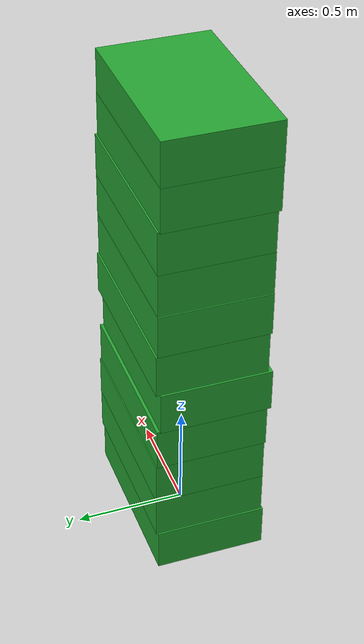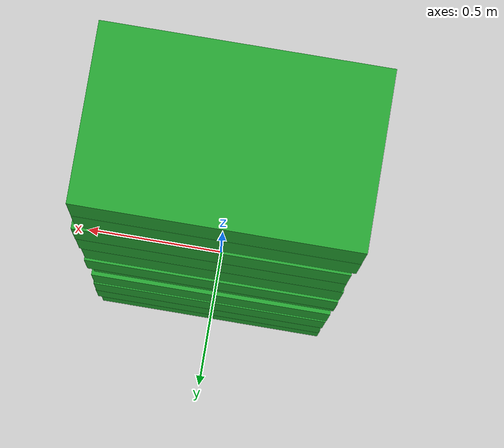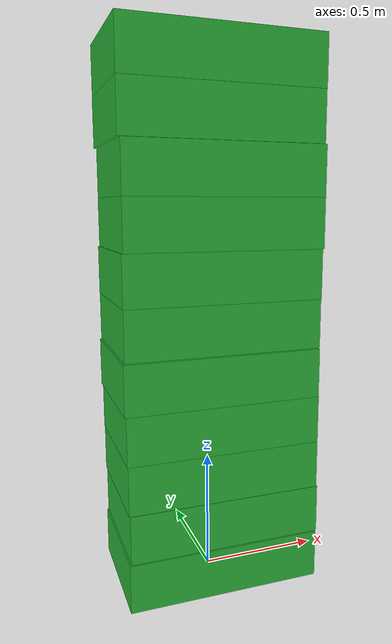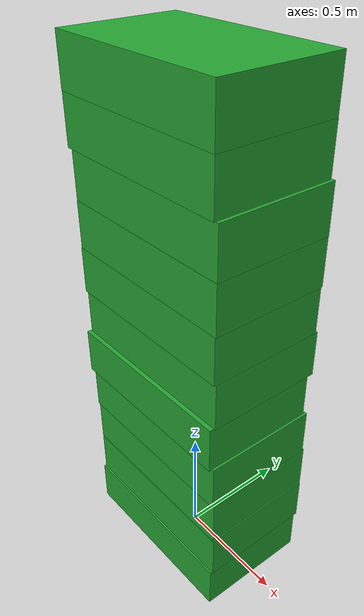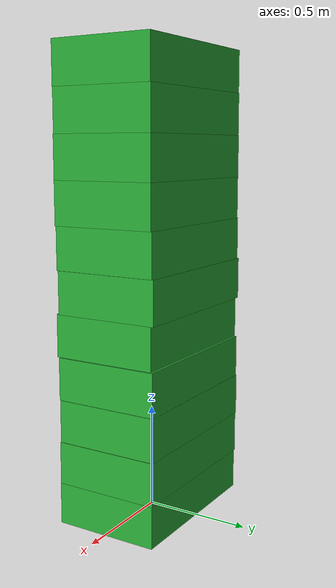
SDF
<?xml version="1.0" encoding="UTF-8"?>
<sdf version='1.4'>
    <model name="baggage_D_x11">
        <model name="baggage_D_0">
            <static>true</static>
            <link name="link">
                <collision name="collision">
                    <geometry>
                    <box>
                        <size>0.8 0.5 0.2</size>
                    </box>
                    </geometry>
                </collision>
                <visual name="visual">
                    <geometry>
                    <box>
                        <size>0.8 0.5 0.2</size>
                    </box>
                    </geometry>
                    <material>
                    <script>
                        <uri>file://media/materials/scripts/gazebo.material</uri>
                        <name>Gazebo/Green</name>
                    </script>
                    </material>
                </visual>
            </link>
            <pose frame=''>0 0 0.1 0 0 0</pose>
        </model>
        <model name="baggage_D_1">
            <static>true</static>
            <link name="link">
                <collision name="collision">
                    <geometry>
                    <box>
                        <size>0.8 0.5 0.2</size>
                    </box>
                    </geometry>
                </collision>
                <visual name="visual">
                    <geometry>
                    <box>
                        <size>0.8 0.5 0.2</size>
                    </box>
                    </geometry>
                    <material>
                    <script>
                        <uri>file://media/materials/scripts/gazebo.material</uri>
                        <name>Gazebo/Green</name>
                    </script>
                    </material>
                </visual>
            </link>
            <pose frame=''>0.0069 0.0078 0.3 0 0 0</pose>
        </model>
        <model name="baggage_D_2">
            <static>true</static>
            <link name="link">
                <collision name="collision">
                    <geometry>
                    <box>
                        <size>0.8 0.5 0.2</size>
                    </box>
                    </geometry>
                </collision>
                <visual name="visual">
                    <geometry>
                    <box>
                        <size>0.8 0.5 0.2</size>
                    </box>
                    </geometry>
                    <material>
                    <script>
                        <uri>file://media/materials/scripts/gazebo.material</uri>
                        <name>Gazebo/Green</name>
                    </script>
                    </material>
                </visual>
            </link>
            <pose frame=''>0.0035 0.0100 0.5 0 0 0</pose>
        </model>
        <model name="baggage_D_3">
            <static>true</static>
            <link name="link">
                <collision name="collision">
                    <geometry>
                    <box>
                        <size>0.8 0.5 0.2</size>
                    </box>
                    </geometry>
                </collision>
                <visual name="visual">
                    <geometry>
                    <box>
                        <size>0.8 0.5 0.2</size>
                    </box>
                    </geometry>
                    <material>
                    <script>
                        <uri>file://media/materials/scripts/gazebo.material</uri>
                        <name>Gazebo/Green</name>
                    </script>
                    </material>
                </visual>
            </link>
            <pose frame=''>0.0009 0.0056 0.7 0 0 0</pose>
        </model>
        <model name="baggage_D_4">
            <static>true</static>
            <link name="link">
                <collision name="collision">
                    <geometry>
                    <box>
                        <size>0.8 0.5 0.2</size>
                    </box>
                    </geometry>
                </collision>
                <visual name="visual">
                    <geometry>
                    <box>
                        <size>0.8 0.5 0.2</size>
                    </box>
                    </geometry>
                    <material>
                    <script>
                        <uri>file://media/materials/scripts/gazebo.material</uri>
                        <name>Gazebo/Green</name>
                    </script>
                    </material>
                </visual>
            </link>
            <pose frame=''>-0.0074 -0.0079 0.9 0 0 0</pose>
        </model>
        <model name="baggage_D_5">
            <static>true</static>
            <link name="link">
                <collision name="collision">
                    <geometry>
                    <box>
                        <size>0.8 0.5 0.2</size>
                    </box>
                    </geometry>
                </collision>
                <visual name="visual">
                    <geometry>
                    <box>
                        <size>0.8 0.5 0.2</size>
                    </box>
                    </geometry>
                    <material>
                    <script>
                        <uri>file://media/materials/scripts/gazebo.material</uri>
                        <name>Gazebo/Green</name>
                    </script>
                    </material>
                </visual>
            </link>
            <pose frame=''>0.0011 0.0099 1.1 0 0 0</pose>
        </model>
        <model name="baggage_D_6">
            <static>true</static>
            <link name="link">
                <collision name="collision">
                    <geometry>
                    <box>
                        <size>0.8 0.5 0.2</size>
                    </box>
                    </geometry>
                </collision>
                <visual name="visual">
                    <geometry>
                    <box>
                        <size>0.8 0.5 0.2</size>
                    </box>
                    </geometry>
                    <material>
                    <script>
                        <uri>file://media/materials/scripts/gazebo.material</uri>
                        <name>Gazebo/Green</name>
                    </script>
                    </material>
                </visual>
            </link>
            <pose frame=''>-0.0009 0.0022 1.3 0 0 0</pose>
        </model>
        <model name="baggage_D_7">
            <static>true</static>
            <link name="link">
                <collision name="collision">
                    <geometry>
                    <box>
                        <size>0.8 0.5 0.2</size>
                    </box>
                    </geometry>
                </collision>
                <visual name="visual">
                    <geometry>
                    <box>
                        <size>0.8 0.5 0.2</size>
                    </box>
                    </geometry>
                    <material>
                    <script>
                        <uri>file://media/materials/scripts/gazebo.material</uri>
                        <name>Gazebo/Green</name>
                    </script>
                    </material>
                </visual>
            </link>
            <pose frame=''>0.0046 0.0014 1.5 0 0 0</pose>
        </model>
        <model name="baggage_D_8">
            <static>true</static>
            <link name="link">
                <collision name="collision">
                    <geometry>
                    <box>
                        <size>0.8 0.5 0.2</size>
                    </box>
                    </geometry>
                </collision>
                <visual name="visual">
                    <geometry>
                    <box>
                        <size>0.8 0.5 0.2</size>
                    </box>
                    </geometry>
                    <material>
                    <script>
                        <uri>file://media/materials/scripts/gazebo.material</uri>
                        <name>Gazebo/Green</name>
                    </script>
                    </material>
                </visual>
            </link>
            <pose frame=''>0.0052 0.0021 1.7 0 0 0</pose>
        </model>
        <model name="baggage_D_9">
            <static>true</static>
            <link name="link">
                <collision name="collision">
                    <geometry>
                    <box>
                        <size>0.8 0.5 0.2</size>
                    </box>
                    </geometry>
                </collision>
                <visual name="visual">
                    <geometry>
                    <box>
                        <size>0.8 0.5 0.2</size>
                    </box>
                    </geometry>
                    <material>
                    <script>
                        <uri>file://media/materials/scripts/gazebo.material</uri>
                        <name>Gazebo/Green</name>
                    </script>
                    </material>
                </visual>
            </link>
            <pose frame=''>-0.0068 -0.0054 1.9 0 0 0</pose>
        </model>
        <model name="baggage_D_10">
            <static>true</static>
            <link name="link">
                <collision name="collision">
                    <geometry>
                    <box>
                        <size>0.8 0.5 0.2</size>
                    </box>
                    </geometry>
                </collision>
                <visual name="visual">
                    <geometry>
                    <box>
                        <size>0.8 0.5 0.2</size>
                    </box>
                    </geometry>
                    <material>
                    <script>
                        <uri>file://media/materials/scripts/gazebo.material</uri>
                        <name>Gazebo/Green</name>
                    </script>
                    </material>
                </visual>
            </link>
            <pose frame=''>-0.0064 -0.0067 2.1 0 0 0</pose>
        </model>
    </model>
</sdf>
